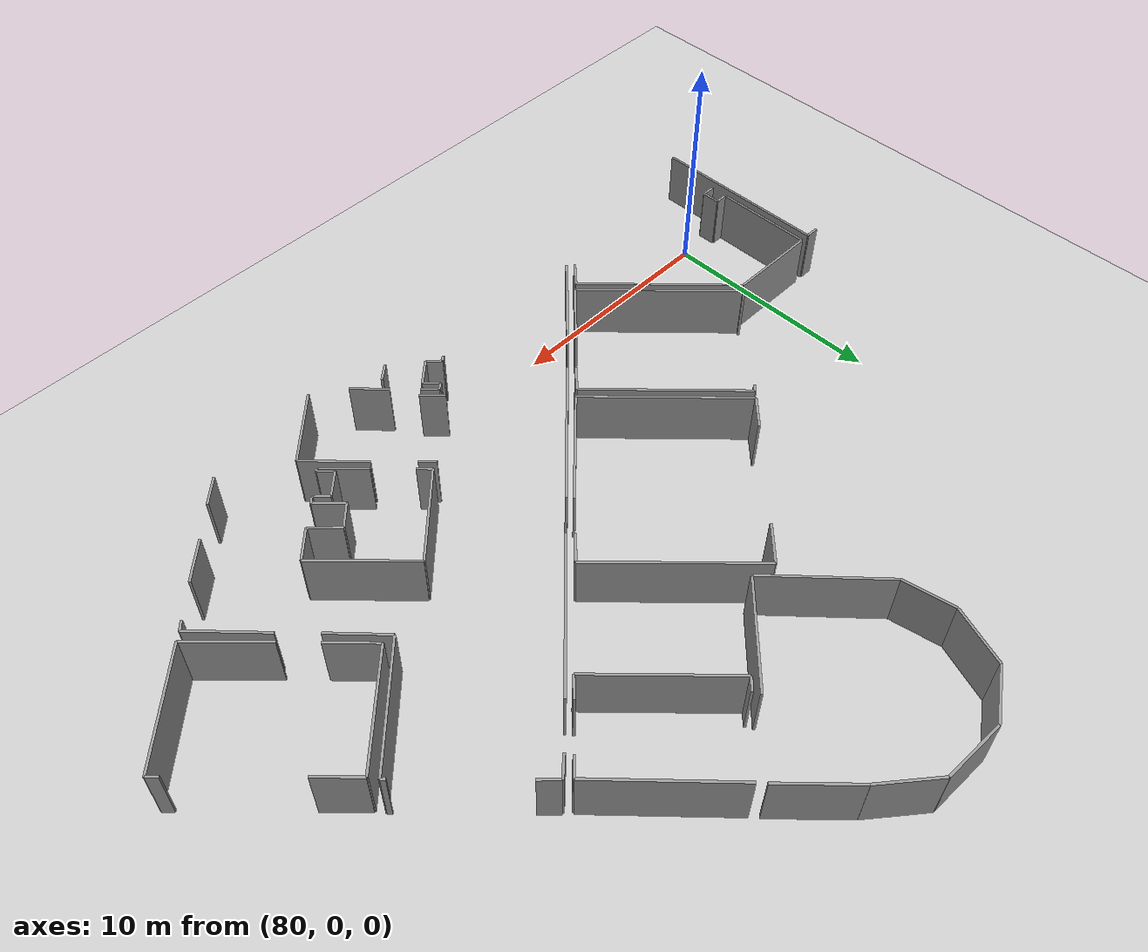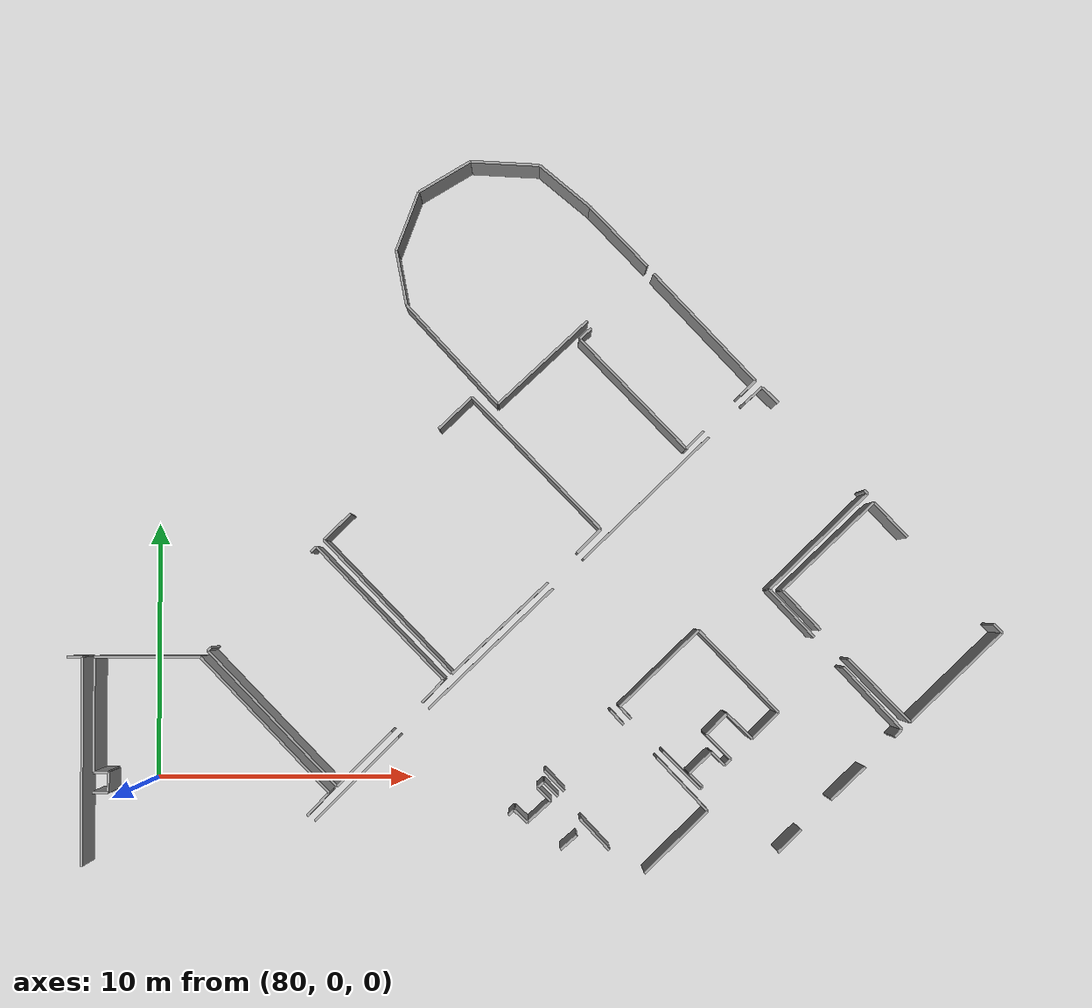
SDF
<sdf version="1.6">
 <world name="default">
  <model name="ground_plane">
   <static>1</static>
   <link name="link">
    <collision name="collision">
     <geometry><plane><normal>0 0 1</normal><size>100 100</size></plane></geometry>
     <surface><friction><ode><mu>100</mu><mu2>50</mu2></ode></friction></surface>
    </collision>
    <visual name="visual">
     <cast_shadows>0</cast_shadows>
     <geometry><plane><normal>0 0 1</normal><size>100 100</size></plane></geometry>
     <material>
      <script><uri>file://media/materials/scripts/gazebo.material</uri><name>Gazebo/Grey</name></script>
     </material>
    </visual>
   </link>
  </model>
  <model name="0510035341_A_40_1_103">
   <static>1</static>
   <link name="Wall_523">
    <collision name="Wall_523_Collision">
     <geometry><box><size>4.54530819586 0.1 2.5</size></box></geometry>
     <pose>2.27265409793 0 1.25 0 0 0</pose>
    </collision>
    <visual name="Wall_523_Visual">
     <pose>2.27265409793 0 1.25 0 0 0</pose>
     <geometry><box><size>4.54530819586 0.1 2.5</size></box></geometry>
     <material>
      <script><uri>file://media/materials/scripts/gazebo.material</uri><name>Gazebo/Grey</name></script>
      <ambient>1 1 1 1</ambient>
     </material>
    </visual>
    <pose>199.321947813 -25.5869468605 0 0 0 0.785161121683</pose>
   </link>
   <link name="Wall_524">
    <collision name="Wall_524_Collision">
     <geometry><box><size>6.68402689345 0.1 2.5</size></box></geometry>
     <pose>3.34201344672 0 1.25 0 0 0</pose>
    </collision>
    <visual name="Wall_524_Visual">
     <pose>3.34201344672 0 1.25 0 0 0</pose>
     <geometry><box><size>6.68402689345 0.1 2.5</size></box></geometry>
     <material>
      <script><uri>file://media/materials/scripts/gazebo.material</uri><name>Gazebo/Grey</name></script>
      <ambient>1 1 1 1</ambient>
     </material>
    </visual>
    <pose>203.689416545 -21.2743317885 0 0 0 0.767235930261</pose>
   </link>
   <link name="Wall_525">
    <collision name="Wall_525_Collision">
     <geometry><box><size>6.79736651324 0.1 2.5</size></box></geometry>
     <pose>3.39868325662 0 1.25 0 0 0</pose>
    </collision>
    <visual name="Wall_525_Visual">
     <pose>3.39868325662 0 1.25 0 0 0</pose>
     <geometry><box><size>6.79736651324 0.1 2.5</size></box></geometry>
     <material>
      <script><uri>file://media/materials/scripts/gazebo.material</uri><name>Gazebo/Grey</name></script>
      <ambient>1 1 1 1</ambient>
     </material>
    </visual>
    <pose>209.666433877 -15.505809155 0 0 0 0.770313043925</pose>
   </link>
   <link name="Wall_526">
    <collision name="Wall_526_Collision">
     <geometry><box><size>0.912735751762 0.1 2.5</size></box></geometry>
     <pose>0.456367875881 0 1.25 0 0 0</pose>
    </collision>
    <visual name="Wall_526_Visual">
     <pose>0.456367875881 0 1.25 0 0 0</pose>
     <geometry><box><size>0.912735751762 0.1 2.5</size></box></geometry>
     <material>
      <script><uri>file://media/materials/scripts/gazebo.material</uri><name>Gazebo/Grey</name></script>
      <ambient>1 1 1 1</ambient>
     </material>
    </visual>
    <pose>215.946670053 -9.43609929528 0 0 0 0.733435526077</pose>
   </link>
   <link name="Wall_527">
    <collision name="Wall_527_Collision">
     <geometry><box><size>0.864815550197 0.1 2.5</size></box></geometry>
     <pose>0.432407775099 0 1.25 0 0 0</pose>
    </collision>
    <visual name="Wall_527_Visual">
     <pose>0.432407775099 0 1.25 0 0 0</pose>
     <geometry><box><size>0.864815550197 0.1 2.5</size></box></geometry>
     <material>
      <script><uri>file://media/materials/scripts/gazebo.material</uri><name>Gazebo/Grey</name></script>
      <ambient>1 1 1 1</ambient>
     </material>
    </visual>
    <pose>216.62472224 -8.82509047045 0 0 0 -0.784567598804</pose>
   </link>
   <link name="Wall_528">
    <collision name="Wall_528_Collision">
     <geometry><box><size>0.189807600304 0.1 2.5</size></box></geometry>
     <pose>0.0949038001519 0 1.25 0 0 0</pose>
    </collision>
    <visual name="Wall_528_Visual">
     <pose>0.0949038001519 0 1.25 0 0 0</pose>
     <geometry><box><size>0.189807600304 0.1 2.5</size></box></geometry>
     <material>
      <script><uri>file://media/materials/scripts/gazebo.material</uri><name>Gazebo/Grey</name></script>
      <ambient>1 1 1 1</ambient>
     </material>
    </visual>
    <pose>220.548282649 -12.8347406514 0 0 0 -0.782559949637</pose>
   </link>
   <link name="Wall_529">
    <collision name="Wall_529_Collision">
     <geometry><box><size>5.31308960796 0.1 2.5</size></box></geometry>
     <pose>2.65654480398 0 1.25 0 0 0</pose>
    </collision>
    <visual name="Wall_529_Visual">
     <pose>2.65654480398 0 1.25 0 0 0</pose>
     <geometry><box><size>5.31308960796 0.1 2.5</size></box></geometry>
     <material>
      <script><uri>file://media/materials/scripts/gazebo.material</uri><name>Gazebo/Grey</name></script>
      <ambient>1 1 1 1</ambient>
     </material>
    </visual>
    <pose>220.682877278 -12.9685734239 0 0 0 -2.36954505743</pose>
   </link>
   <link name="Wall_530">
    <collision name="Wall_530_Collision">
     <geometry><box><size>2.51962121089 0.1 2.5</size></box></geometry>
     <pose>1.25981060544 0 1.25 0 0 0</pose>
    </collision>
    <visual name="Wall_530_Visual">
     <pose>1.25981060544 0 1.25 0 0 0</pose>
     <geometry><box><size>2.51962121089 0.1 2.5</size></box></geometry>
     <material>
      <script><uri>file://media/materials/scripts/gazebo.material</uri><name>Gazebo/Grey</name></script>
      <ambient>1 1 1 1</ambient>
     </material>
    </visual>
    <pose>216.876134849 -16.6750047616 0 0 0 -0.819827966841</pose>
   </link>
   <link name="Wall_531">
    <collision name="Wall_531_Collision">
     <geometry><box><size>3.26490031796 0.1 2.5</size></box></geometry>
     <pose>1.63245015898 0 1.25 0 0 0</pose>
    </collision>
    <visual name="Wall_531_Visual">
     <pose>1.63245015898 0 1.25 0 0 0</pose>
     <geometry><box><size>3.26490031796 0.1 2.5</size></box></geometry>
     <material>
      <script><uri>file://media/materials/scripts/gazebo.material</uri><name>Gazebo/Grey</name></script>
      <ambient>1 1 1 1</ambient>
     </material>
    </visual>
    <pose>219.728017269 -19.6845914545 0 0 0 -0.81796423777</pose>
   </link>
   <link name="Wall_532">
    <collision name="Wall_532_Collision">
     <geometry><box><size>0.416992181374 0.1 2.5</size></box></geometry>
     <pose>0.208496090687 0 1.25 0 0 0</pose>
    </collision>
    <visual name="Wall_532_Visual">
     <pose>0.208496090687 0 1.25 0 0 0</pose>
     <geometry><box><size>0.416992181374 0.1 2.5</size></box></geometry>
     <material>
      <script><uri>file://media/materials/scripts/gazebo.material</uri><name>Gazebo/Grey</name></script>
      <ambient>1 1 1 1</ambient>
     </material>
    </visual>
    <pose>221.960256492 -22.0671703384 0 0 0 -2.31311770627</pose>
   </link>
   <link name="Wall_533">
    <collision name="Wall_533_Collision">
     <geometry><box><size>1.83808806177 0.1 2.5</size></box></geometry>
     <pose>0.919044030883 0 1.25 0 0 0</pose>
    </collision>
    <visual name="Wall_533_Visual">
     <pose>0.919044030883 0 1.25 0 0 0</pose>
     <geometry><box><size>1.83808806177 0.1 2.5</size></box></geometry>
     <material>
      <script><uri>file://media/materials/scripts/gazebo.material</uri><name>Gazebo/Grey</name></script>
      <ambient>1 1 1 1</ambient>
     </material>
    </visual>
    <pose>220.540664085 -23.5205383785 0 0 0 -2.38032739818</pose>
   </link>
   <link name="Wall_534">
    <collision name="Wall_534_Collision">
     <geometry><box><size>1.26126863831 0.1 2.5</size></box></geometry>
     <pose>0.630634319157 0 1.25 0 0 0</pose>
    </collision>
    <visual name="Wall_534_Visual">
     <pose>0.630634319157 0 1.25 0 0 0</pose>
     <geometry><box><size>1.26126863831 0.1 2.5</size></box></geometry>
     <material>
      <script><uri>file://media/materials/scripts/gazebo.material</uri><name>Gazebo/Grey</name></script>
      <ambient>1 1 1 1</ambient>
     </material>
    </visual>
    <pose>218.067170338 -25.9274966669 0 0 0 -2.37869140616</pose>
   </link>
   <link name="Wall_601">
    <collision name="Wall_601_Collision">
     <geometry><box><size>0.601104691766 0.1 2.5</size></box></geometry>
     <pose>0.300552345883 0 1.25 0 0 0</pose>
    </collision>
    <visual name="Wall_601_Visual">
     <pose>0.300552345883 0 1.25 0 0 0</pose>
     <geometry><box><size>0.601104691766 0.1 2.5</size></box></geometry>
     <material>
      <script><uri>file://media/materials/scripts/gazebo.material</uri><name>Gazebo/Grey</name></script>
      <ambient>1 1 1 1</ambient>
     </material>
    </visual>
    <pose>189.709859691 -19.2858866104 0 0 0 0.0</pose>
   </link>
   <link name="Wall_602">
    <collision name="Wall_602_Collision">
     <geometry><box><size>8.04850485683 0.1 2.5</size></box></geometry>
     <pose>4.02425242842 0 1.25 0 0 0</pose>
    </collision>
    <visual name="Wall_602_Visual">
     <pose>4.02425242842 0 1.25 0 0 0</pose>
     <geometry><box><size>8.04850485683 0.1 2.5</size></box></geometry>
     <material>
      <script><uri>file://media/materials/scripts/gazebo.material</uri><name>Gazebo/Grey</name></script>
      <ambient>1 1 1 1</ambient>
     </material>
    </visual>
    <pose>190.310964383 -19.2858866104 0 0 0 -1.57079632679</pose>
   </link>
   <link name="Wall_605">
    <collision name="Wall_605_Collision">
     <geometry><box><size>7.23523837923 0.1 2.5</size></box></geometry>
     <pose>3.61761918961 0 1.25 0 0 0</pose>
    </collision>
    <visual name="Wall_605_Visual">
     <pose>3.61761918961 0 1.25 0 0 0</pose>
     <geometry><box><size>7.23523837923 0.1 2.5</size></box></geometry>
     <material>
      <script><uri>file://media/materials/scripts/gazebo.material</uri><name>Gazebo/Grey</name></script>
      <ambient>1 1 1 1</ambient>
     </material>
    </visual>
    <pose>200.162783315 -24.2618246461 0 0 0 2.33536985661</pose>
   </link>
   <link name="Wall_606">
    <collision name="Wall_606_Collision">
     <geometry><box><size>0.188908979445 0.1 2.5</size></box></geometry>
     <pose>0.0944544897223 0 1.25 0 0 0</pose>
    </collision>
    <visual name="Wall_606_Visual">
     <pose>0.0944544897223 0 1.25 0 0 0</pose>
     <geometry><box><size>0.188908979445 0.1 2.5</size></box></geometry>
     <material>
      <script><uri>file://media/materials/scripts/gazebo.material</uri><name>Gazebo/Grey</name></script>
      <ambient>1 1 1 1</ambient>
     </material>
    </visual>
    <pose>195.154339407 -19.0403149006 0 0 0 0.785398163398</pose>
   </link>
   <link name="Wall_607">
    <collision name="Wall_607_Collision">
     <geometry><box><size>0.299403960944 0.1 2.5</size></box></geometry>
     <pose>0.149701980472 0 1.25 0 0 0</pose>
    </collision>
    <visual name="Wall_607_Visual">
     <pose>0.149701980472 0 1.25 0 0 0</pose>
     <geometry><box><size>0.299403960944 0.1 2.5</size></box></geometry>
     <material>
      <script><uri>file://media/materials/scripts/gazebo.material</uri><name>Gazebo/Grey</name></script>
      <ambient>1 1 1 1</ambient>
     </material>
    </visual>
    <pose>199.114722875 -15.2264618119 0 0 0 0.76560470791</pose>
   </link>
   <link name="Wall_608">
    <collision name="Wall_608_Collision">
     <geometry><box><size>7.13372427703 0.1 2.5</size></box></geometry>
     <pose>3.56686213851 0 1.25 0 0 0</pose>
    </collision>
    <visual name="Wall_608_Visual">
     <pose>3.56686213851 0 1.25 0 0 0</pose>
     <geometry><box><size>7.13372427703 0.1 2.5</size></box></geometry>
     <material>
      <script><uri>file://media/materials/scripts/gazebo.material</uri><name>Gazebo/Grey</name></script>
      <ambient>1 1 1 1</ambient>
     </material>
    </visual>
    <pose>199.330582185 -15.0189829217 0 0 0 -0.80599044837</pose>
   </link>
   <link name="Wall_609">
    <collision name="Wall_609_Collision">
     <geometry><box><size>1.19199881878 0.1 2.5</size></box></geometry>
     <pose>0.595999409392 0 1.25 0 0 0</pose>
    </collision>
    <visual name="Wall_609_Visual">
     <pose>0.595999409392 0 1.25 0 0 0</pose>
     <geometry><box><size>1.19199881878 0.1 2.5</size></box></geometry>
     <material>
      <script><uri>file://media/materials/scripts/gazebo.material</uri><name>Gazebo/Grey</name></script>
      <ambient>1 1 1 1</ambient>
     </material>
    </visual>
    <pose>204.269951114 -20.166084693 0 0 0 -2.33148583683</pose>
   </link>
   <link name="Wall_610">
    <collision name="Wall_610_Collision">
     <geometry><box><size>2.97567570426 0.1 2.5</size></box></geometry>
     <pose>1.48783785213 0 1.25 0 0 0</pose>
    </collision>
    <visual name="Wall_610_Visual">
     <pose>1.48783785213 0 1.25 0 0 0</pose>
     <geometry><box><size>2.97567570426 0.1 2.5</size></box></geometry>
     <material>
      <script><uri>file://media/materials/scripts/gazebo.material</uri><name>Gazebo/Grey</name></script>
      <ambient>1 1 1 1</ambient>
     </material>
    </visual>
    <pose>202.267538569 -22.1583391531 0 0 0 -2.35649622212</pose>
   </link>
   <link name="Wall_611">
    <collision name="Wall_611_Collision">
     <geometry><box><size>7.17721098981 0.1 2.5</size></box></geometry>
     <pose>3.5886054949 0 1.25 0 0 0</pose>
    </collision>
    <visual name="Wall_611_Visual">
     <pose>3.5886054949 0 1.25 0 0 0</pose>
     <geometry><box><size>7.17721098981 0.1 2.5</size></box></geometry>
     <material>
      <script><uri>file://media/materials/scripts/gazebo.material</uri><name>Gazebo/Grey</name></script>
      <ambient>1 1 1 1</ambient>
     </material>
    </visual>
    <pose>204.589930798 -19.9243222653 0 0 0 2.33670295232</pose>
   </link>
   <link name="Wall_612">
    <collision name="Wall_612_Collision">
     <geometry><box><size>1.451841862 0.1 2.5</size></box></geometry>
     <pose>0.725920931002 0 1.25 0 0 0</pose>
    </collision>
    <visual name="Wall_612_Visual">
     <pose>0.725920931002 0 1.25 0 0 0</pose>
     <geometry><box><size>1.451841862 0.1 2.5</size></box></geometry>
     <material>
      <script><uri>file://media/materials/scripts/gazebo.material</uri><name>Gazebo/Grey</name></script>
      <ambient>1 1 1 1</ambient>
     </material>
    </visual>
    <pose>199.614754619 -14.7513173767 0 0 0 0.769318401449</pose>
   </link>
   <link name="Wall_613">
    <collision name="Wall_613_Collision">
     <geometry><box><size>1.78160950744 0.1 2.5</size></box></geometry>
     <pose>0.89080475372 0 1.25 0 0 0</pose>
    </collision>
    <visual name="Wall_613_Visual">
     <pose>0.89080475372 0 1.25 0 0 0</pose>
     <geometry><box><size>1.78160950744 0.1 2.5</size></box></geometry>
     <material>
      <script><uri>file://media/materials/scripts/gazebo.material</uri><name>Gazebo/Grey</name></script>
      <ambient>1 1 1 1</ambient>
     </material>
    </visual>
    <pose>204.071868453 -10.4384483525 0 0 0 0.763121377298</pose>
   </link>
   <link name="Wall_614">
    <collision name="Wall_614_Collision">
     <geometry><box><size>7.16187754449 0.1 2.5</size></box></geometry>
     <pose>3.58093877225 0 1.25 0 0 0</pose>
    </collision>
    <visual name="Wall_614_Visual">
     <pose>3.58093877225 0 1.25 0 0 0</pose>
     <geometry><box><size>7.16187754449 0.1 2.5</size></box></geometry>
     <material>
      <script><uri>file://media/materials/scripts/gazebo.material</uri><name>Gazebo/Grey</name></script>
      <ambient>1 1 1 1</ambient>
     </material>
    </visual>
    <pose>205.359405752 -9.207034474 0 0 0 -0.799916063067</pose>
   </link>
   <link name="Wall_615">
    <collision name="Wall_615_Collision">
     <geometry><box><size>1.29920591803 0.1 2.5</size></box></geometry>
     <pose>0.649602959015 0 1.25 0 0 0</pose>
    </collision>
    <visual name="Wall_615_Visual">
     <pose>0.649602959015 0 1.25 0 0 0</pose>
     <geometry><box><size>1.29920591803 0.1 2.5</size></box></geometry>
     <material>
      <script><uri>file://media/materials/scripts/gazebo.material</uri><name>Gazebo/Grey</name></script>
      <ambient>1 1 1 1</ambient>
     </material>
    </visual>
    <pose>210.349565107 -14.3442321122 0 0 0 -2.35964990146</pose>
   </link>
   <link name="Wall_616">
    <collision name="Wall_616_Collision">
     <geometry><box><size>5.11960061943 0.1 2.5</size></box></geometry>
     <pose>2.55980030971 0 1.25 0 0 0</pose>
    </collision>
    <visual name="Wall_616_Visual">
     <pose>2.55980030971 0 1.25 0 0 0</pose>
     <geometry><box><size>5.11960061943 0.1 2.5</size></box></geometry>
     <material>
      <script><uri>file://media/materials/scripts/gazebo.material</uri><name>Gazebo/Grey</name></script>
      <ambient>1 1 1 1</ambient>
     </material>
    </visual>
    <pose>208.30525046 -16.4020062218 0 0 0 -2.38285483857</pose>
   </link>
   <link name="Wall_617">
    <collision name="Wall_617_Collision">
     <geometry><box><size>5.95452686288 0.1 2.5</size></box></geometry>
     <pose>2.97726343144 0 1.25 0 0 0</pose>
    </collision>
    <visual name="Wall_617_Visual">
     <pose>2.97726343144 0 1.25 0 0 0</pose>
     <geometry><box><size>5.95452686288 0.1 2.5</size></box></geometry>
     <material>
      <script><uri>file://media/materials/scripts/gazebo.material</uri><name>Gazebo/Grey</name></script>
      <ambient>1 1 1 1</ambient>
     </material>
    </visual>
    <pose>213.673798489 -11.2223985779 0 0 0 2.33767697139</pose>
   </link>
   <link name="Wall_618">
    <collision name="Wall_618_Collision">
     <geometry><box><size>0.594819698426 0.1 2.5</size></box></geometry>
     <pose>0.297409849213 0 1.25 0 0 0</pose>
    </collision>
    <visual name="Wall_618_Visual">
     <pose>0.297409849213 0 1.25 0 0 0</pose>
     <geometry><box><size>0.594819698426 0.1 2.5</size></box></geometry>
     <material>
      <script><uri>file://media/materials/scripts/gazebo.material</uri><name>Gazebo/Grey</name></script>
      <ambient>1 1 1 1</ambient>
     </material>
    </visual>
    <pose>209.541997334 -6.93467081455 0 0 0 0.739796677285</pose>
   </link>
   <link name="Wall_619">
    <collision name="Wall_619_Collision">
     <geometry><box><size>5.74720232483 0.1 2.5</size></box></geometry>
     <pose>2.87360116242 0 1.25 0 0 0</pose>
    </collision>
    <visual name="Wall_619_Visual">
     <pose>2.87360116242 0 1.25 0 0 0</pose>
     <geometry><box><size>5.74720232483 0.1 2.5</size></box></geometry>
     <material>
      <script><uri>file://media/materials/scripts/gazebo.material</uri><name>Gazebo/Grey</name></script>
      <ambient>1 1 1 1</ambient>
     </material>
    </visual>
    <pose>212.416735445 -4.39819693988 0 0 0 -0.81511652216</pose>
   </link>
   <link name="Wall_620">
    <collision name="Wall_620_Collision">
     <geometry><box><size>0.846717113601 0.1 2.5</size></box></geometry>
     <pose>0.4233585568 0 1.25 0 0 0</pose>
    </collision>
    <visual name="Wall_620_Visual">
     <pose>0.4233585568 0 1.25 0 0 0</pose>
     <geometry><box><size>0.846717113601 0.1 2.5</size></box></geometry>
     <material>
      <script><uri>file://media/materials/scripts/gazebo.material</uri><name>Gazebo/Grey</name></script>
      <ambient>1 1 1 1</ambient>
     </material>
    </visual>
    <pose>216.358072503 -8.58104247349 0 0 0 -2.36573820891</pose>
   </link>
   <link name="Wall_621">
    <collision name="Wall_621_Collision">
     <geometry><box><size>0.955974080497 0.1 2.5</size></box></geometry>
     <pose>0.477987040249 0 1.25 0 0 0</pose>
    </collision>
    <visual name="Wall_621_Visual">
     <pose>0.477987040249 0 1.25 0 0 0</pose>
     <geometry><box><size>0.955974080497 0.1 2.5</size></box></geometry>
     <material>
      <script><uri>file://media/materials/scripts/gazebo.material</uri><name>Gazebo/Grey</name></script>
      <ambient>1 1 1 1</ambient>
     </material>
    </visual>
    <pose>214.33915307 -10.5359659704 0 0 0 -2.34060304283</pose>
   </link>
   <link name="Wall_622">
    <collision name="Wall_622_Collision">
     <geometry><box><size>5.25868905615 0.1 2.5</size></box></geometry>
     <pose>2.62934452808 0 1.25 0 0 0</pose>
    </collision>
    <visual name="Wall_622_Visual">
     <pose>2.62934452808 0 1.25 0 0 0</pose>
     <geometry><box><size>5.25868905615 0.1 2.5</size></box></geometry>
     <material>
      <script><uri>file://media/materials/scripts/gazebo.material</uri><name>Gazebo/Grey</name></script>
      <ambient>1 1 1 1</ambient>
     </material>
    </visual>
    <pose>206.357437623 -9.48435019999 0 0 0 2.31349709815</pose>
   </link>
   <link name="Wall_623">
    <collision name="Wall_623_Collision">
     <geometry><box><size>2.15828363488 0.1 2.5</size></box></geometry>
     <pose>1.07914181744 0 1.25 0 0 0</pose>
    </collision>
    <visual name="Wall_623_Visual">
     <pose>1.07914181744 0 1.25 0 0 0</pose>
     <geometry><box><size>2.15828363488 0.1 2.5</size></box></geometry>
     <material>
      <script><uri>file://media/materials/scripts/gazebo.material</uri><name>Gazebo/Grey</name></script>
      <ambient>1 1 1 1</ambient>
     </material>
    </visual>
    <pose>202.801091994 -5.61056440861 0 0 0 1.7575537446</pose>
   </link>
   <link name="Wall_624">
    <collision name="Wall_624_Collision">
     <geometry><box><size>2.44683404422 0.1 2.5</size></box></geometry>
     <pose>1.22341702211 0 1.25 0 0 0</pose>
    </collision>
    <visual name="Wall_624_Visual">
     <pose>1.22341702211 0 1.25 0 0 0</pose>
     <geometry><box><size>2.44683404422 0.1 2.5</size></box></geometry>
     <material>
      <script><uri>file://media/materials/scripts/gazebo.material</uri><name>Gazebo/Grey</name></script>
      <ambient>1 1 1 1</ambient>
     </material>
    </visual>
    <pose>202.400355533 -3.48981017078 0 0 0 1.20804127509</pose>
   </link>
   <link name="Wall_625">
    <collision name="Wall_625_Collision">
     <geometry><box><size>2.35040845713 0.1 2.5</size></box></geometry>
     <pose>1.17520422856 0 1.25 0 0 0</pose>
    </collision>
    <visual name="Wall_625_Visual">
     <pose>1.17520422856 0 1.25 0 0 0</pose>
     <geometry><box><size>2.35040845713 0.1 2.5</size></box></geometry>
     <material>
      <script><uri>file://media/materials/scripts/gazebo.material</uri><name>Gazebo/Grey</name></script>
      <ambient>1 1 1 1</ambient>
     </material>
    </visual>
    <pose>203.268617866 -1.20220938353 0 0 0 0.536917374392</pose>
   </link>
   <link name="Wall_626">
    <collision name="Wall_626_Collision">
     <geometry><box><size>2.69355190753 0.1 2.5</size></box></geometry>
     <pose>1.34677595377 0 1.25 0 0 0</pose>
    </collision>
    <visual name="Wall_626_Visual">
     <pose>1.34677595377 0 1.25 0 0 0</pose>
     <geometry><box><size>2.69355190753 0.1 2.5</size></box></geometry>
     <material>
      <script><uri>file://media/materials/scripts/gazebo.material</uri><name>Gazebo/Grey</name></script>
      <ambient>1 1 1 1</ambient>
     </material>
    </visual>
    <pose>205.288299156 -0.0 0 0 0 -0.0558436718534</pose>
   </link>
   <link name="Wall_627">
    <collision name="Wall_627_Collision">
     <geometry><box><size>2.56155429658 0.1 2.5</size></box></geometry>
     <pose>1.28077714829 0 1.25 0 0 0</pose>
    </collision>
    <visual name="Wall_627_Visual">
     <pose>1.28077714829 0 1.25 0 0 0</pose>
     <geometry><box><size>2.56155429658 0.1 2.5</size></box></geometry>
     <material>
      <script><uri>file://media/materials/scripts/gazebo.material</uri><name>Gazebo/Grey</name></script>
      <ambient>1 1 1 1</ambient>
     </material>
    </visual>
    <pose>207.977652213 -0.150339660974 0 0 0 -0.693011951433</pose>
   </link>
   <link name="Wall_628">
    <collision name="Wall_628_Collision">
     <geometry><box><size>3.22029106067 0.1 2.5</size></box></geometry>
     <pose>1.61014553033 0 1.25 0 0 0</pose>
    </collision>
    <visual name="Wall_628_Visual">
     <pose>1.61014553033 0 1.25 0 0 0</pose>
     <geometry><box><size>3.22029106067 0.1 2.5</size></box></geometry>
     <material>
      <script><uri>file://media/materials/scripts/gazebo.material</uri><name>Gazebo/Grey</name></script>
      <ambient>1 1 1 1</ambient>
     </material>
    </visual>
    <pose>209.948320742 -1.78680718685 0 0 0 -0.807091452321</pose>
   </link>
   <link name="Wall_629">
    <collision name="Wall_629_Collision">
     <geometry><box><size>4.74935230932 0.1 2.5</size></box></geometry>
     <pose>2.37467615466 0 1.25 0 0 0</pose>
    </collision>
    <visual name="Wall_629_Visual">
     <pose>2.37467615466 0 1.25 0 0 0</pose>
     <geometry><box><size>4.74935230932 0.1 2.5</size></box></geometry>
     <material>
      <script><uri>file://media/materials/scripts/gazebo.material</uri><name>Gazebo/Grey</name></script>
      <ambient>1 1 1 1</ambient>
     </material>
    </visual>
    <pose>209.831502762 -6.24595263793 0 0 0 -2.39128903413</pose>
   </link>
   <link name="Wall_630">
    <collision name="Wall_630_Collision">
     <geometry><box><size>3.39603889215 0.1 2.5</size></box></geometry>
     <pose>1.69801944607 0 1.25 0 0 0</pose>
    </collision>
    <visual name="Wall_630_Visual">
     <pose>1.69801944607 0 1.25 0 0 0</pose>
     <geometry><box><size>3.39603889215 0.1 2.5</size></box></geometry>
     <material>
      <script><uri>file://media/materials/scripts/gazebo.material</uri><name>Gazebo/Grey</name></script>
      <ambient>1 1 1 1</ambient>
     </material>
    </visual>
    <pose>222.280236175 -21.7941717986 0 0 0 2.34191730065</pose>
   </link>
   <link name="Wall_631">
    <collision name="Wall_631_Collision">
     <geometry><box><size>2.10793462308 0.1 2.5</size></box></geometry>
     <pose>1.05396731154 0 1.25 0 0 0</pose>
    </collision>
    <visual name="Wall_631_Visual">
     <pose>1.05396731154 0 1.25 0 0 0</pose>
     <geometry><box><size>2.10793462308 0.1 2.5</size></box></geometry>
     <material>
      <script><uri>file://media/materials/scripts/gazebo.material</uri><name>Gazebo/Grey</name></script>
      <ambient>1 1 1 1</ambient>
     </material>
    </visual>
    <pose>218.83156625 -18.238334074 0 0 0 2.3310613089</pose>
   </link>
   <link name="Wall_632">
    <collision name="Wall_632_Collision">
     <geometry><box><size>4.91661285605 0.1 2.5</size></box></geometry>
     <pose>2.45830642803 0 1.25 0 0 0</pose>
    </collision>
    <visual name="Wall_632_Visual">
     <pose>2.45830642803 0 1.25 0 0 0</pose>
     <geometry><box><size>4.91661285605 0.1 2.5</size></box></geometry>
     <material>
      <script><uri>file://media/materials/scripts/gazebo.material</uri><name>Gazebo/Grey</name></script>
      <ambient>1 1 1 1</ambient>
     </material>
    </visual>
    <pose>217.378960066 -16.7108120119 0 0 0 0.763226661018</pose>
   </link>
   <link name="Wall_633">
    <collision name="Wall_633_Collision">
     <geometry><box><size>1.85583360262 0.1 2.5</size></box></geometry>
     <pose>0.927916801309 0 1.25 0 0 0</pose>
    </collision>
    <visual name="Wall_633_Visual">
     <pose>0.927916801309 0 1.25 0 0 0</pose>
     <geometry><box><size>1.85583360262 0.1 2.5</size></box></geometry>
     <material>
      <script><uri>file://media/materials/scripts/gazebo.material</uri><name>Gazebo/Grey</name></script>
      <ambient>1 1 1 1</ambient>
     </material>
    </visual>
    <pose>220.931750365 -13.3121706558 0 0 0 -0.804074013666</pose>
   </link>
   <link name="Wall_634">
    <collision name="Wall_634_Collision">
     <geometry><box><size>0.471375447346 0.1 2.5</size></box></geometry>
     <pose>0.235687723673 0 1.25 0 0 0</pose>
    </collision>
    <visual name="Wall_634_Visual">
     <pose>0.235687723673 0 1.25 0 0 0</pose>
     <geometry><box><size>0.471375447346 0.1 2.5</size></box></geometry>
     <material>
      <script><uri>file://media/materials/scripts/gazebo.material</uri><name>Gazebo/Grey</name></script>
      <ambient>1 1 1 1</ambient>
     </material>
    </visual>
    <pose>225.533362961 -18.0189194337 0 0 0 -0.787302922999</pose>
   </link>
   <link name="Wall_635">
    <collision name="Wall_635_Collision">
     <geometry><box><size>4.96996711607 0.1 2.5</size></box></geometry>
     <pose>2.48498355803 0 1.25 0 0 0</pose>
    </collision>
    <visual name="Wall_635_Visual">
     <pose>2.48498355803 0 1.25 0 0 0</pose>
     <geometry><box><size>4.96996711607 0.1 2.5</size></box></geometry>
     <material>
      <script><uri>file://media/materials/scripts/gazebo.material</uri><name>Gazebo/Grey</name></script>
      <ambient>1 1 1 1</ambient>
     </material>
    </visual>
    <pose>225.866040251 -18.3528664847 0 0 0 -2.37675463699</pose>
   </link>
   <link name="Wall_637">
    <collision name="Wall_637_Collision">
     <geometry><box><size>0.287053990076 0.1 2.5</size></box></geometry>
     <pose>0.143526995038 0 1.25 0 0 0</pose>
    </collision>
    <visual name="Wall_637_Visual">
     <pose>0.143526995038 0 1.25 0 0 0</pose>
     <geometry><box><size>0.287053990076 0.1 2.5</size></box></geometry>
     <material>
      <script><uri>file://media/materials/scripts/gazebo.material</uri><name>Gazebo/Grey</name></script>
      <ambient>1 1 1 1</ambient>
     </material>
    </visual>
    <pose>206.784077201 -25.3680401244 0 0 0 0.759121359287</pose>
   </link>
   <link name="Wall_638">
    <collision name="Wall_638_Collision">
     <geometry><box><size>0.699027444806 0.1 2.5</size></box></geometry>
     <pose>0.349513722403 0 1.25 0 0 0</pose>
    </collision>
    <visual name="Wall_638_Visual">
     <pose>0.349513722403 0 1.25 0 0 0</pose>
     <geometry><box><size>0.699027444806 0.1 2.5</size></box></geometry>
     <material>
      <script><uri>file://media/materials/scripts/gazebo.material</uri><name>Gazebo/Grey</name></script>
      <ambient>1 1 1 1</ambient>
     </material>
    </visual>
    <pose>206.992317948 -25.1704653673 0 0 0 -0.74145629525</pose>
   </link>
   <link name="Wall_639">
    <collision name="Wall_639_Collision">
     <geometry><box><size>1.20603738154 0.1 2.5</size></box></geometry>
     <pose>0.603018690769 0 1.25 0 0 0</pose>
    </collision>
    <visual name="Wall_639_Visual">
     <pose>0.603018690769 0 1.25 0 0 0</pose>
     <geometry><box><size>1.20603738154 0.1 2.5</size></box></geometry>
     <material>
      <script><uri>file://media/materials/scripts/gazebo.material</uri><name>Gazebo/Grey</name></script>
      <ambient>1 1 1 1</ambient>
     </material>
    </visual>
    <pose>207.507840772 -25.642562377 0 0 0 0.739075682682</pose>
   </link>
   <link name="Wall_640">
    <collision name="Wall_640_Collision">
     <geometry><box><size>0.731215635786 0.1 2.5</size></box></geometry>
     <pose>0.365607817893 0 1.25 0 0 0</pose>
    </collision>
    <visual name="Wall_640_Visual">
     <pose>0.365607817893 0 1.25 0 0 0</pose>
     <geometry><box><size>0.731215635786 0.1 2.5</size></box></geometry>
     <material>
      <script><uri>file://media/materials/scripts/gazebo.material</uri><name>Gazebo/Grey</name></script>
      <ambient>1 1 1 1</ambient>
     </material>
    </visual>
    <pose>208.399212748 -24.830169513 0 0 0 2.35815912421</pose>
   </link>
   <link name="Wall_641">
    <collision name="Wall_641_Collision">
     <geometry><box><size>0.335776674088 0.1 2.5</size></box></geometry>
     <pose>0.167888337044 0 1.25 0 0 0</pose>
    </collision>
    <visual name="Wall_641_Visual">
     <pose>0.167888337044 0 1.25 0 0 0</pose>
     <geometry><box><size>0.335776674088 0.1 2.5</size></box></geometry>
     <material>
      <script><uri>file://media/materials/scripts/gazebo.material</uri><name>Gazebo/Grey</name></script>
      <ambient>1 1 1 1</ambient>
     </material>
    </visual>
    <pose>207.881150403 -24.3141387848 0 0 0 0.713138136507</pose>
   </link>
   <link name="Wall_642">
    <collision name="Wall_642_Collision">
     <geometry><box><size>0.768961178933 0.1 2.5</size></box></geometry>
     <pose>0.384480589466 0 1.25 0 0 0</pose>
    </collision>
    <visual name="Wall_642_Visual">
     <pose>0.384480589466 0 1.25 0 0 0</pose>
     <geometry><box><size>0.768961178933 0.1 2.5</size></box></geometry>
     <material>
      <script><uri>file://media/materials/scripts/gazebo.material</uri><name>Gazebo/Grey</name></script>
      <ambient>1 1 1 1</ambient>
     </material>
    </visual>
    <pose>208.135102533 -24.0944701924 0 0 0 -0.795206349568</pose>
   </link>
   <link name="Wall_643">
    <collision name="Wall_643_Collision">
     <geometry><box><size>1.63820509569 0.1 2.5</size></box></geometry>
     <pose>0.819102547847 0 1.25 0 0 0</pose>
    </collision>
    <visual name="Wall_643_Visual">
     <pose>0.819102547847 0 1.25 0 0 0</pose>
     <geometry><box><size>1.63820509569 0.1 2.5</size></box></geometry>
     <material>
      <script><uri>file://media/materials/scripts/gazebo.material</uri><name>Gazebo/Grey</name></script>
      <ambient>1 1 1 1</ambient>
     </material>
    </visual>
    <pose>209.53437877 -25.5122849343 0 0 0 -0.818069140013</pose>
   </link>
   <link name="Wall_646">
    <collision name="Wall_646_Collision">
     <geometry><box><size>0.812363610102 0.1 2.5</size></box></geometry>
     <pose>0.406181805051 0 1.25 0 0 0</pose>
    </collision>
    <visual name="Wall_646_Visual">
     <pose>0.406181805051 0 1.25 0 0 0</pose>
     <geometry><box><size>0.812363610102 0.1 2.5</size></box></geometry>
     <material>
      <script><uri>file://media/materials/scripts/gazebo.material</uri><name>Gazebo/Grey</name></script>
      <ambient>1 1 1 1</ambient>
     </material>
    </visual>
    <pose>209.399784141 -26.1517363977 0 0 0 -2.4287618762</pose>
   </link>
   <link name="Wall_664">
    <collision name="Wall_664_Collision">
     <geometry><box><size>2.01891989687 0.1 2.5</size></box></geometry>
     <pose>1.00945994843 0 1.25 0 0 0</pose>
    </collision>
    <visual name="Wall_664_Visual">
     <pose>1.00945994843 0 1.25 0 0 0</pose>
     <geometry><box><size>2.01891989687 0.1 2.5</size></box></geometry>
     <material>
      <script><uri>file://media/materials/scripts/gazebo.material</uri><name>Gazebo/Grey</name></script>
      <ambient>1 1 1 1</ambient>
     </material>
    </visual>
    <pose>214.156307536 -24.3585804076 0 0 0 2.3559276575</pose>
   </link>
   <link name="Wall_665">
    <collision name="Wall_665_Collision">
     <geometry><box><size>0.64174381598 0.1 2.5</size></box></geometry>
     <pose>0.32087190799 0 1.25 0 0 0</pose>
    </collision>
    <visual name="Wall_665_Visual">
     <pose>0.32087190799 0 1.25 0 0 0</pose>
     <geometry><box><size>0.64174381598 0.1 2.5</size></box></geometry>
     <material>
      <script><uri>file://media/materials/scripts/gazebo.material</uri><name>Gazebo/Grey</name></script>
      <ambient>1 1 1 1</ambient>
     </material>
    </visual>
    <pose>211.50758682 -21.6753222018 0 0 0 2.32484977633</pose>
   </link>
   <link name="Wall_666">
    <collision name="Wall_666_Collision">
     <geometry><box><size>4.24932567975 0.1 2.5</size></box></geometry>
     <pose>2.12466283988 0 1.25 0 0 0</pose>
    </collision>
    <visual name="Wall_666_Visual">
     <pose>2.12466283988 0 1.25 0 0 0</pose>
     <geometry><box><size>4.24932567975 0.1 2.5</size></box></geometry>
     <material>
      <script><uri>file://media/materials/scripts/gazebo.material</uri><name>Gazebo/Grey</name></script>
      <ambient>1 1 1 1</ambient>
     </material>
    </visual>
    <pose>211.068249635 -21.2075423783 0 0 0 0.767648548341</pose>
   </link>
   <link name="Wall_667">
    <collision name="Wall_667_Collision">
     <geometry><box><size>4.41597519544 0.1 2.5</size></box></geometry>
     <pose>2.20798759772 0 1.25 0 0 0</pose>
    </collision>
    <visual name="Wall_667_Visual">
     <pose>2.20798759772 0 1.25 0 0 0</pose>
     <geometry><box><size>4.41597519544 0.1 2.5</size></box></geometry>
     <material>
      <script><uri>file://media/materials/scripts/gazebo.material</uri><name>Gazebo/Grey</name></script>
      <ambient>1 1 1 1</ambient>
     </material>
    </visual>
    <pose>214.12583328 -18.2566186274 0 0 0 -0.800403747357</pose>
   </link>
   <link name="Wall_668">
    <collision name="Wall_668_Collision">
     <geometry><box><size>1.43478458665 0.1 2.5</size></box></geometry>
     <pose>0.717392293325 0 1.25 0 0 0</pose>
    </collision>
    <visual name="Wall_668_Visual">
     <pose>0.717392293325 0 1.25 0 0 0</pose>
     <geometry><box><size>1.43478458665 0.1 2.5</size></box></geometry>
     <material>
      <script><uri>file://media/materials/scripts/gazebo.material</uri><name>Gazebo/Grey</name></script>
      <ambient>1 1 1 1</ambient>
     </material>
    </visual>
    <pose>217.201193575 -21.425687258 0 0 0 -2.35994916592</pose>
   </link>
   <link name="Wall_669">
    <collision name="Wall_669_Collision">
     <geometry><box><size>1.37399276251 0.1 2.5</size></box></geometry>
     <pose>0.686996381257 0 1.25 0 0 0</pose>
    </collision>
    <visual name="Wall_669_Visual">
     <pose>0.686996381257 0 1.25 0 0 0</pose>
     <geometry><box><size>1.37399276251 0.1 2.5</size></box></geometry>
     <material>
      <script><uri>file://media/materials/scripts/gazebo.material</uri><name>Gazebo/Grey</name></script>
      <ambient>1 1 1 1</ambient>
     </material>
    </visual>
    <pose>216.182845534 -22.4364167354 0 0 0 2.3678264319</pose>
   </link>
   <link name="Wall_670">
    <collision name="Wall_670_Collision">
     <geometry><box><size>1.1323769616 0.1 2.5</size></box></geometry>
     <pose>0.566188480801 0 1.25 0 0 0</pose>
    </collision>
    <visual name="Wall_670_Visual">
     <pose>0.566188480801 0 1.25 0 0 0</pose>
     <geometry><box><size>1.1323769616 0.1 2.5</size></box></geometry>
     <material>
      <script><uri>file://media/materials/scripts/gazebo.material</uri><name>Gazebo/Grey</name></script>
      <ambient>1 1 1 1</ambient>
     </material>
    </visual>
    <pose>215.20005079 -21.4762237318 0 0 0 -2.35524301569</pose>
   </link>
   <link name="Wall_671">
    <collision name="Wall_671_Collision">
     <geometry><box><size>1.33654909527 0.1 2.5</size></box></geometry>
     <pose>0.668274547633 0 1.25 0 0 0</pose>
    </collision>
    <visual name="Wall_671_Visual">
     <pose>0.668274547633 0 1.25 0 0 0</pose>
     <geometry><box><size>1.33654909527 0.1 2.5</size></box></geometry>
     <material>
      <script><uri>file://media/materials/scripts/gazebo.material</uri><name>Gazebo/Grey</name></script>
      <ambient>1 1 1 1</ambient>
     </material>
    </visual>
    <pose>214.400101581 -22.2776966542 0 0 0 -0.785801226657</pose>
   </link>
   <link name="Wall_672">
    <collision name="Wall_672_Collision">
     <geometry><box><size>0.321831000458 0.1 2.5</size></box></geometry>
     <pose>0.160915500229 0 1.25 0 0 0</pose>
    </collision>
    <visual name="Wall_672_Visual">
     <pose>0.160915500229 0 1.25 0 0 0</pose>
     <geometry><box><size>0.321831000458 0.1 2.5</size></box></geometry>
     <material>
      <script><uri>file://media/materials/scripts/gazebo.material</uri><name>Gazebo/Grey</name></script>
      <ambient>1 1 1 1</ambient>
     </material>
    </visual>
    <pose>215.344803505 -23.2231604343 0 0 0 -2.37181821881</pose>
   </link>
   <link name="Wall_673">
    <collision name="Wall_673_Collision">
     <geometry><box><size>0.708184526135 0.1 2.5</size></box></geometry>
     <pose>0.354092263067 0 1.25 0 0 0</pose>
    </collision>
    <visual name="Wall_673_Visual">
     <pose>0.354092263067 0 1.25 0 0 0</pose>
     <geometry><box><size>0.708184526135 0.1 2.5</size></box></geometry>
     <material>
      <script><uri>file://media/materials/scripts/gazebo.material</uri><name>Gazebo/Grey</name></script>
      <ambient>1 1 1 1</ambient>
     </material>
    </visual>
    <pose>215.113707066 -23.4471462129 0 0 0 2.37572028633</pose>
   </link>
   <link name="Wall_674">
    <collision name="Wall_674_Collision">
     <geometry><box><size>1.19638139501 0.1 2.5</size></box></geometry>
     <pose>0.598190697503 0 1.25 0 0 0</pose>
    </collision>
    <visual name="Wall_674_Visual">
     <pose>0.598190697503 0 1.25 0 0 0</pose>
     <geometry><box><size>1.19638139501 0.1 2.5</size></box></geometry>
     <material>
      <script><uri>file://media/materials/scripts/gazebo.material</uri><name>Gazebo/Grey</name></script>
      <ambient>1 1 1 1</ambient>
     </material>
    </visual>
    <pose>214.603263285 -22.9562567456 0 0 0 -2.38321493938</pose>
   </link>
   <link name="Wall_675">
    <collision name="Wall_675_Collision">
     <geometry><box><size>0.709683483332 0.1 2.5</size></box></geometry>
     <pose>0.354841741666 0 1.25 0 0 0</pose>
    </collision>
    <visual name="Wall_675_Visual">
     <pose>0.354841741666 0 1.25 0 0 0</pose>
     <geometry><box><size>0.709683483332 0.1 2.5</size></box></geometry>
     <material>
      <script><uri>file://media/materials/scripts/gazebo.material</uri><name>Gazebo/Grey</name></script>
      <ambient>1 1 1 1</ambient>
     </material>
    </visual>
    <pose>213.734747 -23.7790616469 0 0 0 -0.778313261701</pose>
   </link>
   <link name="Wall_676">
    <collision name="Wall_676_Collision">
     <geometry><box><size>0.116735139961 0.1 2.5</size></box></geometry>
     <pose>0.0583675699806 0 1.25 0 0 0</pose>
    </collision>
    <visual name="Wall_676_Visual">
     <pose>0.0583675699806 0 1.25 0 0 0</pose>
     <geometry><box><size>0.116735139961 0.1 2.5</size></box></geometry>
     <material>
      <script><uri>file://media/materials/scripts/gazebo.material</uri><name>Gazebo/Grey</name></script>
      <ambient>1 1 1 1</ambient>
     </material>
    </visual>
    <pose>214.240111739 -24.277315726 0 0 0 -2.37157789197</pose>
   </link>
   <link name="Wall_755">
    <collision name="Wall_755_Collision">
     <geometry><box><size>0.595517744905 0.1 2.5</size></box></geometry>
     <pose>0.297758872453 0 1.25 0 0 0</pose>
    </collision>
    <visual name="Wall_755_Visual">
     <pose>0.297758872453 0 1.25 0 0 0</pose>
     <geometry><box><size>0.595517744905 0.1 2.5</size></box></geometry>
     <material>
      <script><uri>file://media/materials/scripts/gazebo.material</uri><name>Gazebo/Grey</name></script>
      <ambient>1 1 1 1</ambient>
     </material>
    </visual>
    <pose>190.732017015 -24.4934289886 0 0 0 0.0</pose>
   </link>
   <link name="Wall_756">
    <collision name="Wall_756_Collision">
     <geometry><box><size>0.783950225383 0.1 2.5</size></box></geometry>
     <pose>0.391975112691 0 1.25 0 0 0</pose>
    </collision>
    <visual name="Wall_756_Visual">
     <pose>0.391975112691 0 1.25 0 0 0</pose>
     <geometry><box><size>0.783950225383 0.1 2.5</size></box></geometry>
     <material>
      <script><uri>file://media/materials/scripts/gazebo.material</uri><name>Gazebo/Grey</name></script>
      <ambient>1 1 1 1</ambient>
     </material>
    </visual>
    <pose>191.32753476 -24.4934289886 0 0 0 1.57079632679</pose>
   </link>
   <link name="Wall_757">
    <collision name="Wall_757_Collision">
     <geometry><box><size>0.566313249952 0.1 2.5</size></box></geometry>
     <pose>0.283156624976 0 1.25 0 0 0</pose>
    </collision>
    <visual name="Wall_757_Visual">
     <pose>0.283156624976 0 1.25 0 0 0</pose>
     <geometry><box><size>0.566313249952 0.1 2.5</size></box></geometry>
     <material>
      <script><uri>file://media/materials/scripts/gazebo.material</uri><name>Gazebo/Grey</name></script>
      <ambient>1 1 1 1</ambient>
     </material>
    </visual>
    <pose>191.32753476 -23.7094787633 0 0 0 3.14159265359</pose>
   </link>
   <link name="Wall_758">
    <collision name="Wall_758_Collision">
     <geometry><box><size>4.42867119548 0.1 2.5</size></box></geometry>
     <pose>2.21433559774 0 1.25 0 0 0</pose>
    </collision>
    <visual name="Wall_758_Visual">
     <pose>2.21433559774 0 1.25 0 0 0</pose>
     <geometry><box><size>4.42867119548 0.1 2.5</size></box></geometry>
     <material>
      <script><uri>file://media/materials/scripts/gazebo.material</uri><name>Gazebo/Grey</name></script>
      <ambient>1 1 1 1</ambient>
     </material>
    </visual>
    <pose>190.76122151 -23.7094787633 0 0 0 1.57079632679</pose>
   </link>
   <link name="Wall_759">
    <collision name="Wall_759_Collision">
     <geometry><box><size>4.10894546378 0.1 2.5</size></box></geometry>
     <pose>2.05447273189 0 1.25 0 0 0</pose>
    </collision>
    <visual name="Wall_759_Visual">
     <pose>2.05447273189 0 1.25 0 0 0</pose>
     <geometry><box><size>4.10894546378 0.1 2.5</size></box></geometry>
     <material>
      <script><uri>file://media/materials/scripts/gazebo.material</uri><name>Gazebo/Grey</name></script>
      <ambient>1 1 1 1</ambient>
     </material>
    </visual>
    <pose>190.76122151 -19.2808075678 0 0 0 0.0</pose>
   </link>
   <link name="Wall_760">
    <collision name="Wall_760_Collision">
     <geometry><box><size>7.2203376105 0.1 2.5</size></box></geometry>
     <pose>3.61016880525 0 1.25 0 0 0</pose>
    </collision>
    <visual name="Wall_760_Visual">
     <pose>3.61016880525 0 1.25 0 0 0</pose>
     <geometry><box><size>7.2203376105 0.1 2.5</size></box></geometry>
     <material>
      <script><uri>file://media/materials/scripts/gazebo.material</uri><name>Gazebo/Grey</name></script>
      <ambient>1 1 1 1</ambient>
     </material>
    </visual>
    <pose>194.870166974 -19.2808075678 0 0 0 -0.808529516341</pose>
   </link>
   <link name="Wall_761">
    <collision name="Wall_761_Collision">
     <geometry><box><size>1.23237194071 0.1 2.5</size></box></geometry>
     <pose>0.616185970357 0 1.25 0 0 0</pose>
    </collision>
    <visual name="Wall_761_Visual">
     <pose>0.616185970357 0 1.25 0 0 0</pose>
     <geometry><box><size>1.23237194071 0.1 2.5</size></box></geometry>
     <material>
      <script><uri>file://media/materials/scripts/gazebo.material</uri><name>Gazebo/Grey</name></script>
      <ambient>1 1 1 1</ambient>
     </material>
    </visual>
    <pose>199.856263094 -24.5030791696 0 0 0 -2.3273395274</pose>
   </link>
   <link name="Wall_765">
    <collision name="Wall_765_Collision">
     <geometry><box><size>1.08107275596 0.1 2.5</size></box></geometry>
     <pose>0.540536377978 0 1.25 0 0 0</pose>
    </collision>
    <visual name="Wall_765_Visual">
     <pose>0.540536377978 0 1.25 0 0 0</pose>
     <geometry><box><size>1.08107275596 0.1 2.5</size></box></geometry>
     <material>
      <script><uri>file://media/materials/scripts/gazebo.material</uri><name>Gazebo/Grey</name></script>
      <ambient>1 1 1 1</ambient>
     </material>
    </visual>
    <pose>208.919814615 -24.441368802 0 0 0 2.34622804279</pose>
   </link>
   <link name="Wall_766">
    <collision name="Wall_766_Collision">
     <geometry><box><size>0.735449753068 0.1 2.5</size></box></geometry>
     <pose>0.367724876534 0 1.25 0 0 0</pose>
    </collision>
    <visual name="Wall_766_Visual">
     <pose>0.367724876534 0 1.25 0 0 0</pose>
     <geometry><box><size>0.735449753068 0.1 2.5</size></box></geometry>
     <material>
      <script><uri>file://media/materials/scripts/gazebo.material</uri><name>Gazebo/Grey</name></script>
      <ambient>1 1 1 1</ambient>
     </material>
    </visual>
    <pose>210.710177132 -21.353564853 0 0 0 -0.81323659752</pose>
   </link>
   <link name="Wall_767">
    <collision name="Wall_767_Collision">
     <geometry><box><size>2.83732017455 0.1 2.5</size></box></geometry>
     <pose>1.41866008728 0 1.25 0 0 0</pose>
    </collision>
    <visual name="Wall_767_Visual">
     <pose>1.41866008728 0 1.25 0 0 0</pose>
     <geometry><box><size>2.83732017455 0.1 2.5</size></box></geometry>
     <material>
      <script><uri>file://media/materials/scripts/gazebo.material</uri><name>Gazebo/Grey</name></script>
      <ambient>1 1 1 1</ambient>
     </material>
    </visual>
    <pose>212.500539648 -23.1617040188 0 0 0 -0.814135343225</pose>
   </link>
   <link name="Wall_768">
    <collision name="Wall_768_Collision">
     <geometry><box><size>3.39878316823 0.1 2.5</size></box></geometry>
     <pose>1.69939158411 0 1.25 0 0 0</pose>
    </collision>
    <visual name="Wall_768_Visual">
     <pose>1.69939158411 0 1.25 0 0 0</pose>
     <geometry><box><size>3.39878316823 0.1 2.5</size></box></geometry>
     <material>
      <script><uri>file://media/materials/scripts/gazebo.material</uri><name>Gazebo/Grey</name></script>
      <ambient>1 1 1 1</ambient>
     </material>
    </visual>
    <pose>214.448352486 -25.2248111231 0 0 0 -2.36750120479</pose>
   </link>
   <pose>-112.9 24.0688781665 0 0 0 0</pose>
  </model>
 </world>
</sdf>
